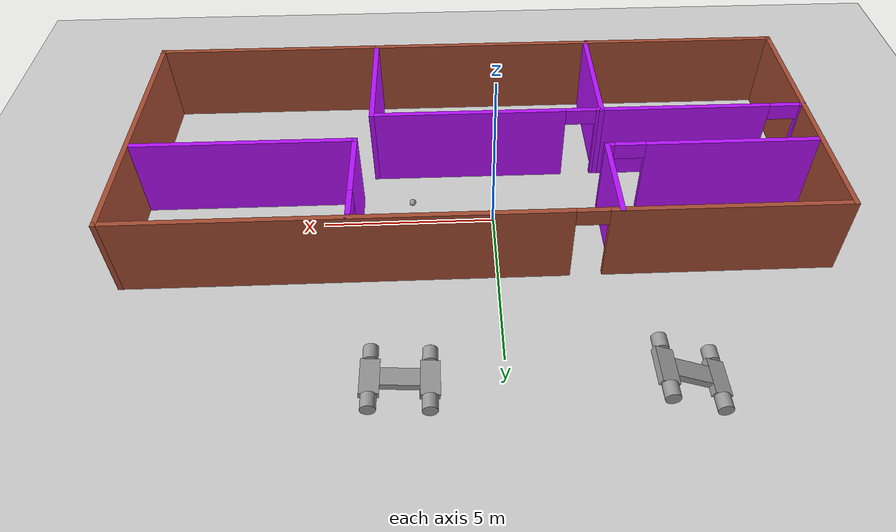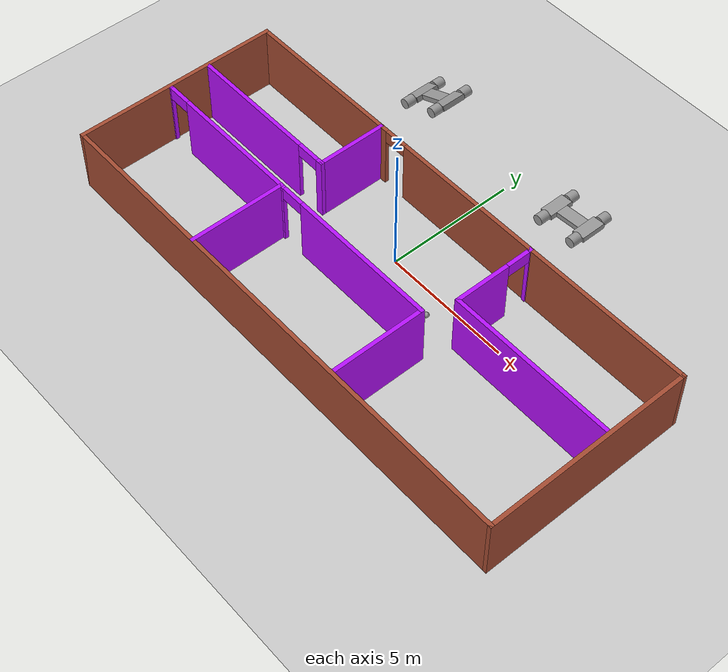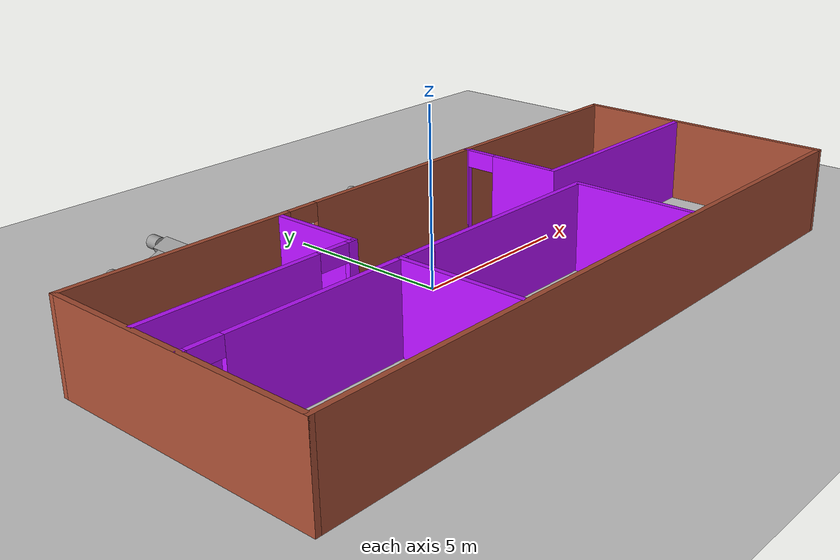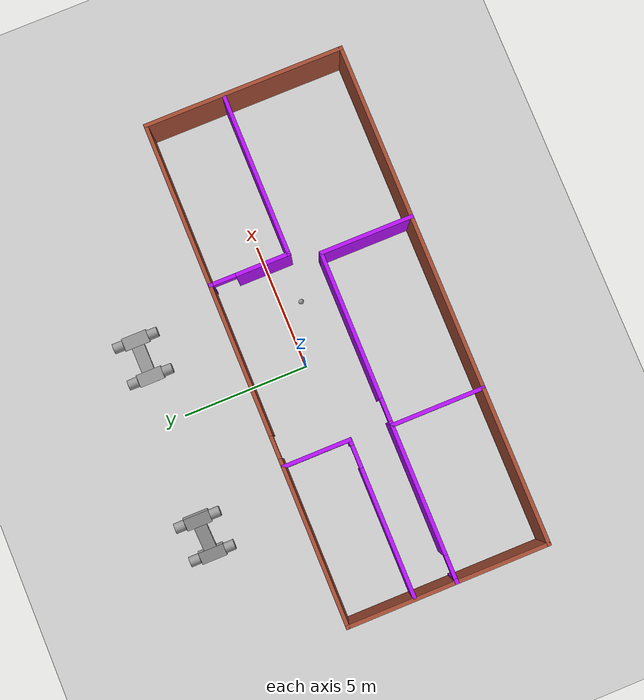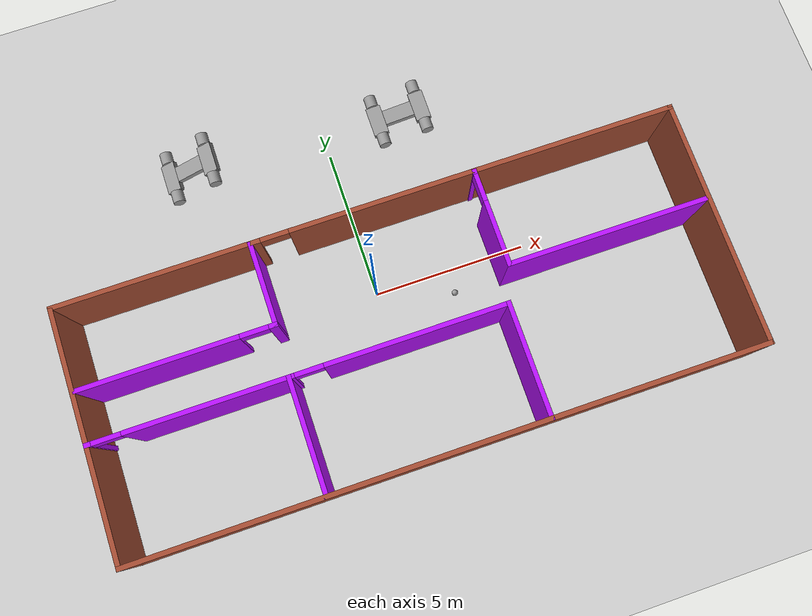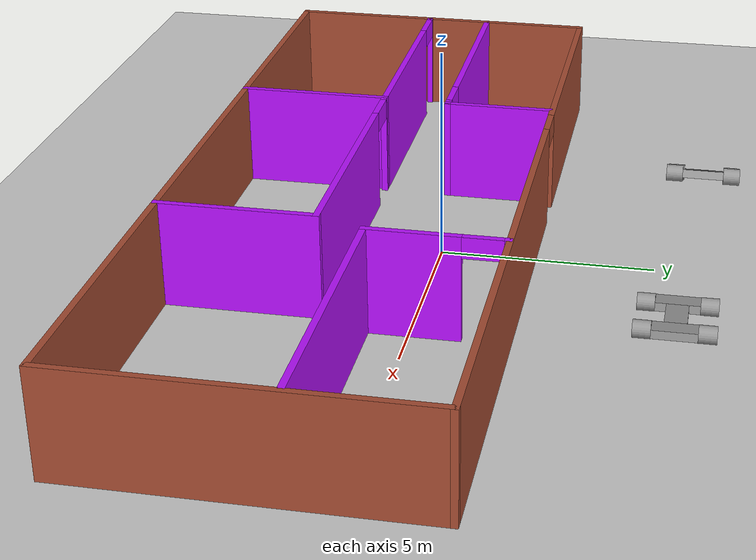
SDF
<sdf version="1.6">
 <world name="default">
  <plugin name="welcome" filename="libwelcome.so"/>
  <light name="sun" type="directional">
   <pose>0 0 10 0 -0 0</pose>
   <diffuse>0.8 0.8 0.8 1</diffuse>
   <specular>0.2 0.2 0.2 1</specular>
   <attenuation>
    <range>1000</range>
    <constant>0.9</constant>
    <linear>0.01</linear>
    <quadratic>0.001</quadratic>
   </attenuation>
   <direction>-0.5 0.1 -0.9</direction>
  </light>
  <model name="ground_plane">
   <static>1</static>
   <link name="link">
    <collision name="collision">
     <geometry><plane><normal>0 0 1</normal><size>100 100</size></plane></geometry>
     <surface>
      <contact><collide_bitmask>65535</collide_bitmask></contact>
      <friction><ode><mu>100</mu><mu2>50</mu2></ode></friction>
     </surface>
    </collision>
    <visual name="visual">
     <cast_shadows>0</cast_shadows>
     <geometry><plane><normal>0 0 1</normal><size>100 100</size></plane></geometry>
     <material>
      <script><uri>file://media/materials/scripts/gazebo.material</uri><name>Gazebo/Grey</name></script>
     </material>
    </visual>
   </link>
  </model>
  <gravity>0 0 -9.8</gravity>
  <magnetic_field>6e-06 2.3e-05 -4.2e-05</magnetic_field>
  <atmosphere type="adiabatic"/>
  <physics name="default_physics" default="0" type="ode">
   <max_step_size>0.001</max_step_size>
   <real_time_factor>1</real_time_factor>
   <real_time_update_rate>1000</real_time_update_rate>
  </physics>
  <scene><ambient>0.4 0.4 0.4 1</ambient><background>0.7 0.7 0.7 1</background><shadows>1</shadows></scene>
  <spherical_coordinates>
   <surface_model>EARTH_WGS84</surface_model>
   <latitude_deg>0</latitude_deg>
   <longitude_deg>0</longitude_deg>
   <elevation>0</elevation>
   <heading_deg>0</heading_deg>
  </spherical_coordinates>
  <model name="mycar">
   <link name="link_0">
    <pose>-0.750022 -0.70002 0 1.5707 -0 0</pose>
    <inertial>
     <mass>1</mass>
     <inertia><ixx>0.145833</ixx><ixy>0</ixy><ixz>0</ixz><iyy>0.145833</iyy><iyz>0</iyz><izz>0.125</izz></inertia>
    </inertial>
    <visual name="visual">
     <geometry><cylinder><radius>0.2</radius><length>0.4</length></cylinder></geometry>
     <material>
      <lighting>1</lighting>
      <script><uri>file://media/materials/scripts/gazebo.material</uri><name>Gazebo/Grey</name></script>
      <shader type="pixel"><normal_map>__default__</normal_map></shader>
      <ambient>0.3 0.3 0.3 1</ambient>
      <diffuse>0.7 0.7 0.7 1</diffuse>
      <specular>0.01 0.01 0.01 1</specular>
      <emissive>0 0 0 1</emissive>
     </material>
    </visual>
    <collision name="collision">
     <geometry><cylinder><radius>0.2</radius><length>0.4</length></cylinder></geometry>
     <surface>
      <friction>
       <ode><mu>1</mu><mu2>1</mu2><fdir1>0 0 0</fdir1><slip1>0</slip1><slip2>0</slip2></ode>
       <torsional>
        <coefficient>1</coefficient>
        <patch_radius>0</patch_radius>
        <surface_radius>0</surface_radius>
        <use_patch_radius>1</use_patch_radius>
        <ode><slip>0</slip></ode>
       </torsional>
      </friction>
      <bounce><restitution_coefficient>0</restitution_coefficient><threshold>1e+06</threshold></bounce>
      <contact>
       <collide_without_contact>0</collide_without_contact>
       <collide_without_contact_bitmask>1</collide_without_contact_bitmask>
       <collide_bitmask>1</collide_bitmask>
       <ode>
        <soft_cfm>0</soft_cfm>
        <soft_erp>0.2</soft_erp>
        <kp>1e+13</kp>
        <kd>1</kd>
        <max_vel>0.01</max_vel>
        <min_depth>0</min_depth>
       </ode>
       <bullet>
        <split_impulse>1</split_impulse>
        <split_impulse_penetration_threshold>-0.01</split_impulse_penetration_threshold>
        <soft_cfm>0</soft_cfm>
        <soft_erp>0.2</soft_erp>
        <kp>1e+13</kp>
        <kd>1</kd>
       </bullet>
      </contact>
     </surface>
    </collision>
   </link>
   <link name="link_0_clone">
    <pose>-0.750022 0.700018 0 1.5707 -0 0</pose>
    <inertial>
     <mass>1</mass>
     <inertia><ixx>0.145833</ixx><ixy>0</ixy><ixz>0</ixz><iyy>0.145833</iyy><iyz>0</iyz><izz>0.125</izz></inertia>
    </inertial>
    <visual name="visual">
     <geometry><cylinder><radius>0.2</radius><length>0.4</length></cylinder></geometry>
     <material>
      <lighting>1</lighting>
      <script><uri>file://media/materials/scripts/gazebo.material</uri><name>Gazebo/Grey</name></script>
      <shader type="pixel"><normal_map>__default__</normal_map></shader>
      <ambient>0.3 0.3 0.3 1</ambient>
      <diffuse>0.7 0.7 0.7 1</diffuse>
      <specular>0.01 0.01 0.01 1</specular>
      <emissive>0 0 0 1</emissive>
     </material>
    </visual>
    <collision name="collision">
     <geometry><cylinder><radius>0.2</radius><length>0.4</length></cylinder></geometry>
     <surface>
      <friction>
       <ode><mu>1</mu><mu2>1</mu2><fdir1>0 0 0</fdir1><slip1>0</slip1><slip2>0</slip2></ode>
       <torsional>
        <coefficient>1</coefficient>
        <patch_radius>0</patch_radius>
        <surface_radius>0</surface_radius>
        <use_patch_radius>1</use_patch_radius>
        <ode><slip>0</slip></ode>
       </torsional>
      </friction>
      <bounce><restitution_coefficient>0</restitution_coefficient><threshold>1e+06</threshold></bounce>
      <contact>
       <collide_without_contact>0</collide_without_contact>
       <collide_without_contact_bitmask>1</collide_without_contact_bitmask>
       <collide_bitmask>1</collide_bitmask>
       <ode>
        <soft_cfm>0</soft_cfm>
        <soft_erp>0.2</soft_erp>
        <kp>1e+13</kp>
        <kd>1</kd>
        <max_vel>0.01</max_vel>
        <min_depth>0</min_depth>
       </ode>
       <bullet>
        <split_impulse>1</split_impulse>
        <split_impulse_penetration_threshold>-0.01</split_impulse_penetration_threshold>
        <soft_cfm>0</soft_cfm>
        <soft_erp>0.2</soft_erp>
        <kp>1e+13</kp>
        <kd>1</kd>
       </bullet>
      </contact>
     </surface>
    </collision>
   </link>
   <link name="link_0_clone_0">
    <pose>0.750026 -0.70002 0 1.5707 -0 0</pose>
    <inertial>
     <mass>1</mass>
     <inertia><ixx>0.145833</ixx><ixy>0</ixy><ixz>0</ixz><iyy>0.145833</iyy><iyz>0</iyz><izz>0.125</izz></inertia>
    </inertial>
    <visual name="visual">
     <geometry><cylinder><radius>0.2</radius><length>0.4</length></cylinder></geometry>
     <material>
      <lighting>1</lighting>
      <script><uri>file://media/materials/scripts/gazebo.material</uri><name>Gazebo/Grey</name></script>
      <shader type="pixel"><normal_map>__default__</normal_map></shader>
      <ambient>0.3 0.3 0.3 1</ambient>
      <diffuse>0.7 0.7 0.7 1</diffuse>
      <specular>0.01 0.01 0.01 1</specular>
      <emissive>0 0 0 1</emissive>
     </material>
    </visual>
    <collision name="collision">
     <geometry><cylinder><radius>0.2</radius><length>0.4</length></cylinder></geometry>
     <surface>
      <friction>
       <ode><mu>1</mu><mu2>1</mu2><fdir1>0 0 0</fdir1><slip1>0</slip1><slip2>0</slip2></ode>
       <torsional>
        <coefficient>1</coefficient>
        <patch_radius>0</patch_radius>
        <surface_radius>0</surface_radius>
        <use_patch_radius>1</use_patch_radius>
        <ode><slip>0</slip></ode>
       </torsional>
      </friction>
      <bounce><restitution_coefficient>0</restitution_coefficient><threshold>1e+06</threshold></bounce>
      <contact>
       <collide_without_contact>0</collide_without_contact>
       <collide_without_contact_bitmask>1</collide_without_contact_bitmask>
       <collide_bitmask>1</collide_bitmask>
       <ode>
        <soft_cfm>0</soft_cfm>
        <soft_erp>0.2</soft_erp>
        <kp>1e+13</kp>
        <kd>1</kd>
        <max_vel>0.01</max_vel>
        <min_depth>0</min_depth>
       </ode>
       <bullet>
        <split_impulse>1</split_impulse>
        <split_impulse_penetration_threshold>-0.01</split_impulse_penetration_threshold>
        <soft_cfm>0</soft_cfm>
        <soft_erp>0.2</soft_erp>
        <kp>1e+13</kp>
        <kd>1</kd>
       </bullet>
      </contact>
     </surface>
    </collision>
   </link>
   <link name="link_0_clone_1">
    <pose>0.750026 0.700018 0 1.5707 -0 0</pose>
    <inertial>
     <mass>1</mass>
     <inertia><ixx>0.145833</ixx><ixy>0</ixy><ixz>0</ixz><iyy>0.145833</iyy><iyz>0</iyz><izz>0.125</izz></inertia>
    </inertial>
    <visual name="visual">
     <geometry><cylinder><radius>0.2</radius><length>0.4</length></cylinder></geometry>
     <material>
      <lighting>1</lighting>
      <script><uri>file://media/materials/scripts/gazebo.material</uri><name>Gazebo/Grey</name></script>
      <shader type="pixel"><normal_map>__default__</normal_map></shader>
      <ambient>0.3 0.3 0.3 1</ambient>
      <diffuse>0.7 0.7 0.7 1</diffuse>
      <specular>0.01 0.01 0.01 1</specular>
      <emissive>0 0 0 1</emissive>
     </material>
    </visual>
    <collision name="collision">
     <geometry><cylinder><radius>0.2</radius><length>0.4</length></cylinder></geometry>
     <surface>
      <friction>
       <ode><mu>1</mu><mu2>1</mu2><fdir1>0 0 0</fdir1><slip1>0</slip1><slip2>0</slip2></ode>
       <torsional>
        <coefficient>1</coefficient>
        <patch_radius>0</patch_radius>
        <surface_radius>0</surface_radius>
        <use_patch_radius>1</use_patch_radius>
        <ode><slip>0</slip></ode>
       </torsional>
      </friction>
      <bounce><restitution_coefficient>0</restitution_coefficient><threshold>1e+06</threshold></bounce>
      <contact>
       <collide_without_contact>0</collide_without_contact>
       <collide_without_contact_bitmask>1</collide_without_contact_bitmask>
       <collide_bitmask>1</collide_bitmask>
       <ode>
        <soft_cfm>0</soft_cfm>
        <soft_erp>0.2</soft_erp>
        <kp>1e+13</kp>
        <kd>1</kd>
        <max_vel>0.01</max_vel>
        <min_depth>0</min_depth>
       </ode>
       <bullet>
        <split_impulse>1</split_impulse>
        <split_impulse_penetration_threshold>-0.01</split_impulse_penetration_threshold>
        <soft_cfm>0</soft_cfm>
        <soft_erp>0.2</soft_erp>
        <kp>1e+13</kp>
        <kd>1</kd>
       </bullet>
      </contact>
     </surface>
    </collision>
   </link>
   <link name="link_1">
    <pose>0.750026 -1e-06 0 0 -0 0</pose>
    <inertial>
     <mass>1</mass>
     <inertia>
      <ixx>0.166667</ixx>
      <ixy>0</ixy>
      <ixz>0</ixz>
      <iyy>0.166667</iyy>
      <iyz>0</iyz>
      <izz>0.166667</izz>
     </inertia>
    </inertial>
    <visual name="visual">
     <geometry><box><size>0.5 1 0.2</size></box></geometry>
     <material>
      <lighting>1</lighting>
      <script><uri>file://media/materials/scripts/gazebo.material</uri><name>Gazebo/Grey</name></script>
      <shader type="pixel"><normal_map>__default__</normal_map></shader>
      <ambient>0.3 0.3 0.3 1</ambient>
      <diffuse>0.7 0.7 0.7 1</diffuse>
      <specular>0.01 0.01 0.01 1</specular>
      <emissive>0 0 0 1</emissive>
     </material>
    </visual>
    <collision name="collision">
     <geometry><box><size>0.5 1 0.2</size></box></geometry>
     <surface>
      <friction>
       <ode><mu>1</mu><mu2>1</mu2><fdir1>0 0 0</fdir1><slip1>0</slip1><slip2>0</slip2></ode>
       <torsional>
        <coefficient>1</coefficient>
        <patch_radius>0</patch_radius>
        <surface_radius>0</surface_radius>
        <use_patch_radius>1</use_patch_radius>
        <ode><slip>0</slip></ode>
       </torsional>
      </friction>
      <bounce><restitution_coefficient>0</restitution_coefficient><threshold>1e+06</threshold></bounce>
      <contact>
       <collide_without_contact>0</collide_without_contact>
       <collide_without_contact_bitmask>1</collide_without_contact_bitmask>
       <collide_bitmask>1</collide_bitmask>
       <ode>
        <soft_cfm>0</soft_cfm>
        <soft_erp>0.2</soft_erp>
        <kp>1e+13</kp>
        <kd>1</kd>
        <max_vel>0.01</max_vel>
        <min_depth>0</min_depth>
       </ode>
       <bullet>
        <split_impulse>1</split_impulse>
        <split_impulse_penetration_threshold>-0.01</split_impulse_penetration_threshold>
        <soft_cfm>0</soft_cfm>
        <soft_erp>0.2</soft_erp>
        <kp>1e+13</kp>
        <kd>1</kd>
       </bullet>
      </contact>
     </surface>
    </collision>
   </link>
   <link name="link_1_clone">
    <pose>-0.750022 -1e-06 0 0 -0 0</pose>
    <inertial>
     <mass>1</mass>
     <inertia>
      <ixx>0.166667</ixx>
      <ixy>0</ixy>
      <ixz>0</ixz>
      <iyy>0.166667</iyy>
      <iyz>0</iyz>
      <izz>0.166667</izz>
     </inertia>
    </inertial>
    <visual name="visual">
     <geometry><box><size>0.5 1 0.2</size></box></geometry>
     <material>
      <lighting>1</lighting>
      <script><uri>file://media/materials/scripts/gazebo.material</uri><name>Gazebo/Grey</name></script>
      <shader type="pixel"><normal_map>__default__</normal_map></shader>
      <ambient>0.3 0.3 0.3 1</ambient>
      <diffuse>0.7 0.7 0.7 1</diffuse>
      <specular>0.01 0.01 0.01 1</specular>
      <emissive>0 0 0 1</emissive>
     </material>
    </visual>
    <collision name="collision">
     <geometry><box><size>0.5 1 0.2</size></box></geometry>
     <surface>
      <friction>
       <ode><mu>1</mu><mu2>1</mu2><fdir1>0 0 0</fdir1><slip1>0</slip1><slip2>0</slip2></ode>
       <torsional>
        <coefficient>1</coefficient>
        <patch_radius>0</patch_radius>
        <surface_radius>0</surface_radius>
        <use_patch_radius>1</use_patch_radius>
        <ode><slip>0</slip></ode>
       </torsional>
      </friction>
      <bounce><restitution_coefficient>0</restitution_coefficient><threshold>1e+06</threshold></bounce>
      <contact>
       <collide_without_contact>0</collide_without_contact>
       <collide_without_contact_bitmask>1</collide_without_contact_bitmask>
       <collide_bitmask>1</collide_bitmask>
       <ode>
        <soft_cfm>0</soft_cfm>
        <soft_erp>0.2</soft_erp>
        <kp>1e+13</kp>
        <kd>1</kd>
        <max_vel>0.01</max_vel>
        <min_depth>0</min_depth>
       </ode>
       <bullet>
        <split_impulse>1</split_impulse>
        <split_impulse_penetration_threshold>-0.01</split_impulse_penetration_threshold>
        <soft_cfm>0</soft_cfm>
        <soft_erp>0.2</soft_erp>
        <kp>1e+13</kp>
        <kd>1</kd>
       </bullet>
      </contact>
     </surface>
    </collision>
   </link>
   <link name="link_1_clone_0">
    <pose>2e-06 -1e-06 0 0 -0 1.5707</pose>
    <inertial>
     <mass>1</mass>
     <inertia>
      <ixx>0.166667</ixx>
      <ixy>0</ixy>
      <ixz>0</ixz>
      <iyy>0.166667</iyy>
      <iyz>0</iyz>
      <izz>0.166667</izz>
     </inertia>
    </inertial>
    <visual name="visual">
     <geometry><box><size>0.5 1 0.2</size></box></geometry>
     <material>
      <lighting>1</lighting>
      <script><uri>file://media/materials/scripts/gazebo.material</uri><name>Gazebo/Grey</name></script>
      <shader type="pixel"><normal_map>__default__</normal_map></shader>
      <ambient>0.3 0.3 0.3 1</ambient>
      <diffuse>0.7 0.7 0.7 1</diffuse>
      <specular>0.01 0.01 0.01 1</specular>
      <emissive>0 0 0 1</emissive>
     </material>
    </visual>
    <collision name="collision">
     <geometry><box><size>0.5 1 0.2</size></box></geometry>
     <surface>
      <friction>
       <ode><mu>1</mu><mu2>1</mu2><fdir1>0 0 0</fdir1><slip1>0</slip1><slip2>0</slip2></ode>
       <torsional>
        <coefficient>1</coefficient>
        <patch_radius>0</patch_radius>
        <surface_radius>0</surface_radius>
        <use_patch_radius>1</use_patch_radius>
        <ode><slip>0</slip></ode>
       </torsional>
      </friction>
      <bounce><restitution_coefficient>0</restitution_coefficient><threshold>1e+06</threshold></bounce>
      <contact>
       <collide_without_contact>0</collide_without_contact>
       <collide_without_contact_bitmask>1</collide_without_contact_bitmask>
       <collide_bitmask>1</collide_bitmask>
       <ode>
        <soft_cfm>0</soft_cfm>
        <soft_erp>0.2</soft_erp>
        <kp>1e+13</kp>
        <kd>1</kd>
        <max_vel>0.01</max_vel>
        <min_depth>0</min_depth>
       </ode>
       <bullet>
        <split_impulse>1</split_impulse>
        <split_impulse_penetration_threshold>-0.01</split_impulse_penetration_threshold>
        <soft_cfm>0</soft_cfm>
        <soft_erp>0.2</soft_erp>
        <kp>1e+13</kp>
        <kd>1</kd>
       </bullet>
      </contact>
     </surface>
    </collision>
   </link>
   <joint name="link_1_JOINT_2" type="revolute">
    <parent>link_1</parent>
    <child>link_0_clone_0</child>
    <axis>
     <xyz>0 0 1</xyz>
     <use_parent_model_frame>0</use_parent_model_frame>
     <limit>
      <lower>-1.79769e+308</lower>
      <upper>1.79769e+308</upper>
      <effort>-1</effort>
      <velocity>-1</velocity>
     </limit>
     <dynamics>
      <spring_reference>0</spring_reference>
      <spring_stiffness>0</spring_stiffness>
      <damping>0</damping>
      <friction>0</friction>
     </dynamics>
    </axis>
    <physics>
     <ode><limit><cfm>0</cfm><erp>0.2</erp></limit><suspension><cfm>0</cfm><erp>0.2</erp></suspension></ode>
    </physics>
   </joint>
   <joint name="link_1_JOINT_3" type="revolute">
    <parent>link_1</parent>
    <child>link_0_clone_1</child>
    <axis>
     <xyz>0 0 1</xyz>
     <use_parent_model_frame>0</use_parent_model_frame>
     <limit>
      <lower>-1.79769e+308</lower>
      <upper>1.79769e+308</upper>
      <effort>-1</effort>
      <velocity>-1</velocity>
     </limit>
     <dynamics>
      <spring_reference>0</spring_reference>
      <spring_stiffness>0</spring_stiffness>
      <damping>0</damping>
     </dynamics>
    </axis>
    <physics>
     <ode><limit><cfm>0</cfm><erp>0.2</erp></limit><suspension><cfm>0</cfm><erp>0.2</erp></suspension></ode>
    </physics>
   </joint>
   <joint name="link_1_clone_0_JOINT_0" type="fixed">
    <parent>link_1_clone_0</parent>
    <child>link_1_clone</child>
    <physics>
     <ode><limit><cfm>0</cfm><erp>0.2</erp></limit><suspension><cfm>0</cfm><erp>0.2</erp></suspension></ode>
    </physics>
   </joint>
   <joint name="link_1_clone_0_JOINT_1" type="fixed">
    <parent>link_1_clone_0</parent>
    <child>link_1</child>
    <physics>
     <ode><limit><cfm>0</cfm><erp>0.2</erp></limit><suspension><cfm>0</cfm><erp>0.2</erp></suspension></ode>
    </physics>
   </joint>
   <joint name="link_1_clone_JOINT_4" type="revolute">
    <parent>link_1_clone</parent>
    <child>link_0</child>
    <axis>
     <xyz>0 0 1</xyz>
     <use_parent_model_frame>0</use_parent_model_frame>
     <limit>
      <lower>-1.79769e+308</lower>
      <upper>1.79769e+308</upper>
      <effort>-1</effort>
      <velocity>-1</velocity>
     </limit>
     <dynamics>
      <spring_reference>0</spring_reference>
      <spring_stiffness>0</spring_stiffness>
      <damping>0</damping>
     </dynamics>
    </axis>
    <physics>
     <ode><limit><cfm>0</cfm><erp>0.2</erp></limit><suspension><cfm>0</cfm><erp>0.2</erp></suspension></ode>
    </physics>
   </joint>
   <joint name="link_1_clone_JOINT_5" type="revolute">
    <parent>link_1_clone</parent>
    <child>link_0_clone</child>
    <axis>
     <xyz>0 0 1</xyz>
     <use_parent_model_frame>0</use_parent_model_frame>
     <limit>
      <lower>-1.79769e+308</lower>
      <upper>1.79769e+308</upper>
      <effort>-1</effort>
      <velocity>-1</velocity>
     </limit>
     <dynamics>
      <spring_reference>0</spring_reference>
      <spring_stiffness>0</spring_stiffness>
      <damping>0</damping>
     </dynamics>
    </axis>
    <physics>
     <ode><limit><cfm>0</cfm><erp>0.2</erp></limit><suspension><cfm>0</cfm><erp>0.2</erp></suspension></ode>
    </physics>
   </joint>
   <static>0</static>
   <pose>2.64196 5.64799 0.274882 -2e-06 -0.099982 0.000424</pose>
  </model>
  <model name="myroom">
   <pose>0.50331 -1.75342 0 0 -0 0</pose>
   <link name="Wall_1">
    <collision name="Wall_1_Collision">
     <geometry><box><size>8 0.15 2.5</size></box></geometry>
     <pose>0 0 1.25 0 -0 0</pose>
    </collision>
    <visual name="Wall_1_Visual">
     <pose>0 0 1.25 0 -0 0</pose>
     <geometry><box><size>8 0.15 2.5</size></box></geometry>
     <material>
      <script><uri>file://media/materials/scripts/gazebo.material</uri><name>Gazebo/Bricks</name></script>
      <ambient>1 1 1 1</ambient>
     </material>
     <meta><layer>0</layer></meta>
    </visual>
    <pose>-9.925 0 0 0 0 -1.5708</pose>
   </link>
   <link name="Wall_10">
    <pose>-6.78002 1.30489 0 0 -0 3.14159</pose>
    <visual name="Wall_10_Visual_0">
     <pose>-2.98063 0 1.25 0 -0 0</pose>
     <geometry><box><size>0.288748 0.15 2.5</size></box></geometry>
     <material>
      <script><uri>file://media/materials/scripts/gazebo.material</uri><name>Gazebo/Grey</name></script>
      <ambient>0.721569 0.0627451 1 1</ambient>
     </material>
     <meta><layer>0</layer></meta>
    </visual>
    <collision name="Wall_10_Collision_0">
     <geometry><box><size>0.288748 0.15 2.5</size></box></geometry>
     <pose>-2.98063 0 1.25 0 -0 0</pose>
    </collision>
    <visual name="Wall_10_Visual_1">
     <pose>0.594374 0 1.25 0 -0 0</pose>
     <geometry><box><size>5.06125 0.15 2.5</size></box></geometry>
     <material>
      <script><uri>file://media/materials/scripts/gazebo.material</uri><name>Gazebo/Grey</name></script>
      <ambient>0.721569 0.0627451 1 1</ambient>
     </material>
     <meta><layer>0</layer></meta>
    </visual>
    <collision name="Wall_10_Collision_1">
     <geometry><box><size>5.06125 0.15 2.5</size></box></geometry>
     <pose>0.594374 0 1.25 0 -0 0</pose>
    </collision>
    <visual name="Wall_10_Visual_2">
     <pose>-2.38625 0 2.25 0 -0 0</pose>
     <geometry><box><size>0.9 0.15 0.5</size></box></geometry>
     <material>
      <script><uri>file://media/materials/scripts/gazebo.material</uri><name>Gazebo/Grey</name></script>
      <ambient>0.721569 0.0627451 1 1</ambient>
     </material>
     <meta><layer>0</layer></meta>
    </visual>
    <collision name="Wall_10_Collision_2">
     <geometry><box><size>0.9 0.15 0.5</size></box></geometry>
     <pose>-2.38625 0 2.25 0 -0 0</pose>
    </collision>
   </link>
   <link name="Wall_12">
    <pose>-0.4 -0.318964 0 0 -0 0</pose>
    <visual name="Wall_12_Visual_0">
     <pose>-3.37853 0 1.25 0 -0 0</pose>
     <geometry><box><size>0.242933 0.15 2.5</size></box></geometry>
     <material>
      <script><uri>file://media/materials/scripts/gazebo.material</uri><name>Gazebo/Grey</name></script>
      <ambient>0.721569 0.0627451 1 1</ambient>
     </material>
     <meta><layer>0</layer></meta>
    </visual>
    <collision name="Wall_12_Collision_0">
     <geometry><box><size>0.242933 0.15 2.5</size></box></geometry>
     <pose>-3.37853 0 1.25 0 -0 0</pose>
    </collision>
    <visual name="Wall_12_Visual_1">
     <pose>0.571467 0 1.25 0 -0 0</pose>
     <geometry><box><size>5.85707 0.15 2.5</size></box></geometry>
     <material>
      <script><uri>file://media/materials/scripts/gazebo.material</uri><name>Gazebo/Grey</name></script>
      <ambient>0.721569 0.0627451 1 1</ambient>
     </material>
     <meta><layer>0</layer></meta>
    </visual>
    <collision name="Wall_12_Collision_1">
     <geometry><box><size>5.85707 0.15 2.5</size></box></geometry>
     <pose>0.571467 0 1.25 0 -0 0</pose>
    </collision>
    <visual name="Wall_12_Visual_2">
     <pose>-2.80707 0 2.25 0 -0 0</pose>
     <geometry><box><size>0.9 0.15 0.5</size></box></geometry>
     <material>
      <script><uri>file://media/materials/scripts/gazebo.material</uri><name>Gazebo/Grey</name></script>
      <ambient>0.721569 0.0627451 1 1</ambient>
     </material>
     <meta><layer>0</layer></meta>
    </visual>
    <collision name="Wall_12_Collision_2">
     <geometry><box><size>0.9 0.15 0.5</size></box></geometry>
     <pose>-2.80707 0 2.25 0 -0 0</pose>
    </collision>
   </link>
   <link name="Wall_13">
    <collision name="Wall_13_Collision">
     <geometry><box><size>3.75 0.15 2.5</size></box></geometry>
     <pose>0 0 1.25 0 -0 0</pose>
    </collision>
    <visual name="Wall_13_Visual">
     <pose>0 0 1.25 0 -0 0</pose>
     <geometry><box><size>3.75 0.15 2.5</size></box></geometry>
     <material>
      <script><uri>file://media/materials/scripts/gazebo.material</uri><name>Gazebo/Grey</name></script>
      <ambient>0.721569 0.0627451 1 1</ambient>
     </material>
     <meta><layer>0</layer></meta>
    </visual>
    <pose>3.025 -2.11896 0 0 0 -1.5708</pose>
   </link>
   <link name="Wall_15">
    <pose>3.45052 2.35489 0 0 0 -1.5708</pose>
    <visual name="Wall_15_Visual_0">
     <pose>-1.54097 0 1.25 0 -0 0</pose>
     <geometry><box><size>0.168066 0.15 2.5</size></box></geometry>
     <material>
      <script><uri>file://media/materials/scripts/gazebo.material</uri><name>Gazebo/Grey</name></script>
      <ambient>0.721569 0.0627451 1 1</ambient>
     </material>
     <meta><layer>0</layer></meta>
    </visual>
    <collision name="Wall_15_Collision_0">
     <geometry><box><size>0.168066 0.15 2.5</size></box></geometry>
     <pose>-1.54097 0 1.25 0 -0 0</pose>
    </collision>
    <visual name="Wall_15_Visual_1">
     <pose>0.534033 0 1.25 0 -0 0</pose>
     <geometry><box><size>2.18193 0.15 2.5</size></box></geometry>
     <material>
      <script><uri>file://media/materials/scripts/gazebo.material</uri><name>Gazebo/Grey</name></script>
      <ambient>0.721569 0.0627451 1 1</ambient>
     </material>
     <meta><layer>0</layer></meta>
    </visual>
    <collision name="Wall_15_Collision_1">
     <geometry><box><size>2.18193 0.15 2.5</size></box></geometry>
     <pose>0.534033 0 1.25 0 -0 0</pose>
    </collision>
    <visual name="Wall_15_Visual_2">
     <pose>-1.00693 0 2.25 0 -0 0</pose>
     <geometry><box><size>0.9 0.15 0.5</size></box></geometry>
     <material>
      <script><uri>file://media/materials/scripts/gazebo.material</uri><name>Gazebo/Grey</name></script>
      <ambient>0.721569 0.0627451 1 1</ambient>
     </material>
     <meta><layer>0</layer></meta>
    </visual>
    <collision name="Wall_15_Collision_2">
     <geometry><box><size>0.9 0.15 0.5</size></box></geometry>
     <pose>-1.00693 0 2.25 0 -0 0</pose>
    </collision>
   </link>
   <link name="Wall_16">
    <collision name="Wall_16_Collision">
     <geometry><box><size>6.5 0.15 2.5</size></box></geometry>
     <pose>0 0 1.25 0 -0 0</pose>
    </collision>
    <visual name="Wall_16_Visual">
     <pose>0 0 1.25 0 -0 0</pose>
     <geometry><box><size>6.5 0.15 2.5</size></box></geometry>
     <material>
      <script><uri>file://media/materials/scripts/gazebo.material</uri><name>Gazebo/Grey</name></script>
      <ambient>0.721569 0.0627451 1 1</ambient>
     </material>
     <meta><layer>0</layer></meta>
    </visual>
    <pose>6.62552 0.804886 0 0 -0 0</pose>
   </link>
   <link name="Wall_2">
    <collision name="Wall_2_Collision">
     <geometry><box><size>20 0.15 2.5</size></box></geometry>
     <pose>0 0 1.25 0 -0 0</pose>
    </collision>
    <visual name="Wall_2_Visual">
     <pose>0 0 1.25 0 -0 0</pose>
     <geometry><box><size>20 0.15 2.5</size></box></geometry>
     <material>
      <script><uri>file://media/materials/scripts/gazebo.material</uri><name>Gazebo/Bricks</name></script>
      <ambient>1 1 1 1</ambient>
     </material>
     <meta><layer>0</layer></meta>
    </visual>
    <pose>0 -3.925 0 0 -0 0</pose>
   </link>
   <link name="Wall_3">
    <collision name="Wall_3_Collision">
     <geometry><box><size>8 0.15 2.5</size></box></geometry>
     <pose>0 0 1.25 0 -0 0</pose>
    </collision>
    <visual name="Wall_3_Visual">
     <pose>0 0 1.25 0 -0 0</pose>
     <geometry><box><size>8 0.15 2.5</size></box></geometry>
     <material>
      <script><uri>file://media/materials/scripts/gazebo.material</uri><name>Gazebo/Bricks</name></script>
      <ambient>1 1 1 1</ambient>
     </material>
     <meta><layer>0</layer></meta>
    </visual>
    <pose>9.925 0 0 0 -0 1.5708</pose>
   </link>
   <link name="Wall_4">
    <pose>0 3.925 0 0 -0 3.14159</pose>
    <visual name="Wall_4_Visual_0">
     <pose>-3.74215 0 1.25 0 -0 0</pose>
     <geometry><box><size>12.5157 0.15 2.5</size></box></geometry>
     <material>
      <script><uri>file://media/materials/scripts/gazebo.material</uri><name>Gazebo/Bricks</name></script>
      <ambient>1 1 1 1</ambient>
     </material>
     <meta><layer>0</layer></meta>
    </visual>
    <collision name="Wall_4_Collision_0">
     <geometry><box><size>12.5157 0.15 2.5</size></box></geometry>
     <pose>-3.74215 0 1.25 0 -0 0</pose>
    </collision>
    <visual name="Wall_4_Visual_1">
     <pose>6.70785 0 1.25 0 -0 0</pose>
     <geometry><box><size>6.5843 0.15 2.5</size></box></geometry>
     <material>
      <script><uri>file://media/materials/scripts/gazebo.material</uri><name>Gazebo/Bricks</name></script>
      <ambient>1 1 1 1</ambient>
     </material>
     <meta><layer>0</layer></meta>
    </visual>
    <collision name="Wall_4_Collision_1">
     <geometry><box><size>6.5843 0.15 2.5</size></box></geometry>
     <pose>6.70785 0 1.25 0 -0 0</pose>
    </collision>
    <visual name="Wall_4_Visual_2">
     <pose>2.9657 0 2.25 0 -0 0</pose>
     <geometry><box><size>0.9 0.15 0.5</size></box></geometry>
     <material>
      <script><uri>file://media/materials/scripts/gazebo.material</uri><name>Gazebo/Bricks</name></script>
      <ambient>1 1 1 1</ambient>
     </material>
     <meta><layer>0</layer></meta>
    </visual>
    <collision name="Wall_4_Collision_2">
     <geometry><box><size>0.9 0.15 0.5</size></box></geometry>
     <pose>2.9657 0 2.25 0 -0 0</pose>
    </collision>
   </link>
   <link name="Wall_6">
    <pose>-6.875 -0.318964 0 0 -0 0</pose>
    <visual name="Wall_6_Visual_0">
     <pose>-3.02085 0 1.25 0 -0 0</pose>
     <geometry><box><size>0.208294 0.15 2.5</size></box></geometry>
     <material>
      <script><uri>file://media/materials/scripts/gazebo.material</uri><name>Gazebo/Grey</name></script>
      <ambient>0.721569 0.0627451 1 1</ambient>
     </material>
     <meta><layer>0</layer></meta>
    </visual>
    <collision name="Wall_6_Collision_0">
     <geometry><box><size>0.208294 0.15 2.5</size></box></geometry>
     <pose>-3.02085 0 1.25 0 -0 0</pose>
    </collision>
    <visual name="Wall_6_Visual_1">
     <pose>0.554147 0 1.25 0 -0 0</pose>
     <geometry><box><size>5.14171 0.15 2.5</size></box></geometry>
     <material>
      <script><uri>file://media/materials/scripts/gazebo.material</uri><name>Gazebo/Grey</name></script>
      <ambient>0.721569 0.0627451 1 1</ambient>
     </material>
     <meta><layer>0</layer></meta>
    </visual>
    <collision name="Wall_6_Collision_1">
     <geometry><box><size>5.14171 0.15 2.5</size></box></geometry>
     <pose>0.554147 0 1.25 0 -0 0</pose>
    </collision>
    <visual name="Wall_6_Visual_2">
     <pose>-2.46671 0 2.25 0 -0 0</pose>
     <geometry><box><size>0.9 0.15 0.5</size></box></geometry>
     <material>
      <script><uri>file://media/materials/scripts/gazebo.material</uri><name>Gazebo/Grey</name></script>
      <ambient>0.721569 0.0627451 1 1</ambient>
     </material>
     <meta><layer>0</layer></meta>
    </visual>
    <collision name="Wall_6_Collision_2">
     <geometry><box><size>0.9 0.15 0.5</size></box></geometry>
     <pose>-2.46671 0 2.25 0 -0 0</pose>
    </collision>
   </link>
   <link name="Wall_7">
    <collision name="Wall_7_Collision">
     <geometry><box><size>3.75 0.15 2.5</size></box></geometry>
     <pose>0 0 1.25 0 -0 0</pose>
    </collision>
    <visual name="Wall_7_Visual">
     <pose>0 0 1.25 0 -0 0</pose>
     <geometry><box><size>3.75 0.15 2.5</size></box></geometry>
     <material>
      <script><uri>file://media/materials/scripts/gazebo.material</uri><name>Gazebo/Grey</name></script>
      <ambient>0.721569 0.0627451 1 1</ambient>
     </material>
     <meta><layer>0</layer></meta>
    </visual>
    <pose>-3.825 -2.11896 0 0 0 -1.5708</pose>
   </link>
   <link name="Wall_9">
    <collision name="Wall_9_Collision">
     <geometry><box><size>2.75 0.15 2.5</size></box></geometry>
     <pose>0 0 1.25 0 -0 0</pose>
    </collision>
    <visual name="Wall_9_Visual">
     <pose>0 0 1.25 0 -0 0</pose>
     <geometry><box><size>2.75 0.15 2.5</size></box></geometry>
     <material>
      <script><uri>file://media/materials/scripts/gazebo.material</uri><name>Gazebo/Grey</name></script>
      <ambient>0.721569 0.0627451 1 1</ambient>
     </material>
     <meta><layer>0</layer></meta>
    </visual>
    <pose>-3.73002 2.60489 0 0 0 -1.5708</pose>
   </link>
   <static>1</static>
  </model>
  <model name="mycar_clone">
   <link name="link_0">
    <pose>-0.750022 -0.70002 0 1.5707 -0 0</pose>
    <inertial>
     <mass>1</mass>
     <inertia><ixx>0.145833</ixx><ixy>0</ixy><ixz>0</ixz><iyy>0.145833</iyy><iyz>0</iyz><izz>0.125</izz></inertia>
    </inertial>
    <visual name="visual">
     <geometry><cylinder><radius>0.2</radius><length>0.4</length></cylinder></geometry>
     <material>
      <lighting>1</lighting>
      <script><uri>file://media/materials/scripts/gazebo.material</uri><name>Gazebo/Grey</name></script>
      <shader type="pixel"><normal_map>__default__</normal_map></shader>
      <ambient>0.3 0.3 0.3 1</ambient>
      <diffuse>0.7 0.7 0.7 1</diffuse>
      <specular>0.01 0.01 0.01 1</specular>
      <emissive>0 0 0 1</emissive>
     </material>
    </visual>
    <collision name="collision">
     <geometry><cylinder><radius>0.2</radius><length>0.4</length></cylinder></geometry>
     <surface>
      <friction>
       <ode><mu>1</mu><mu2>1</mu2><fdir1>0 0 0</fdir1><slip1>0</slip1><slip2>0</slip2></ode>
       <torsional>
        <coefficient>1</coefficient>
        <patch_radius>0</patch_radius>
        <surface_radius>0</surface_radius>
        <use_patch_radius>1</use_patch_radius>
        <ode><slip>0</slip></ode>
       </torsional>
      </friction>
      <bounce><restitution_coefficient>0</restitution_coefficient><threshold>1e+06</threshold></bounce>
      <contact>
       <collide_without_contact>0</collide_without_contact>
       <collide_without_contact_bitmask>1</collide_without_contact_bitmask>
       <collide_bitmask>1</collide_bitmask>
       <ode>
        <soft_cfm>0</soft_cfm>
        <soft_erp>0.2</soft_erp>
        <kp>1e+13</kp>
        <kd>1</kd>
        <max_vel>0.01</max_vel>
        <min_depth>0</min_depth>
       </ode>
       <bullet>
        <split_impulse>1</split_impulse>
        <split_impulse_penetration_threshold>-0.01</split_impulse_penetration_threshold>
        <soft_cfm>0</soft_cfm>
        <soft_erp>0.2</soft_erp>
        <kp>1e+13</kp>
        <kd>1</kd>
       </bullet>
      </contact>
     </surface>
    </collision>
   </link>
   <link name="link_0_clone">
    <pose>-0.750022 0.700018 0 1.5707 -0 0</pose>
    <inertial>
     <mass>1</mass>
     <inertia><ixx>0.145833</ixx><ixy>0</ixy><ixz>0</ixz><iyy>0.145833</iyy><iyz>0</iyz><izz>0.125</izz></inertia>
    </inertial>
    <visual name="visual">
     <geometry><cylinder><radius>0.2</radius><length>0.4</length></cylinder></geometry>
     <material>
      <lighting>1</lighting>
      <script><uri>file://media/materials/scripts/gazebo.material</uri><name>Gazebo/Grey</name></script>
      <shader type="pixel"><normal_map>__default__</normal_map></shader>
      <ambient>0.3 0.3 0.3 1</ambient>
      <diffuse>0.7 0.7 0.7 1</diffuse>
      <specular>0.01 0.01 0.01 1</specular>
      <emissive>0 0 0 1</emissive>
     </material>
    </visual>
    <collision name="collision">
     <geometry><cylinder><radius>0.2</radius><length>0.4</length></cylinder></geometry>
     <surface>
      <friction>
       <ode><mu>1</mu><mu2>1</mu2><fdir1>0 0 0</fdir1><slip1>0</slip1><slip2>0</slip2></ode>
       <torsional>
        <coefficient>1</coefficient>
        <patch_radius>0</patch_radius>
        <surface_radius>0</surface_radius>
        <use_patch_radius>1</use_patch_radius>
        <ode><slip>0</slip></ode>
       </torsional>
      </friction>
      <bounce><restitution_coefficient>0</restitution_coefficient><threshold>1e+06</threshold></bounce>
      <contact>
       <collide_without_contact>0</collide_without_contact>
       <collide_without_contact_bitmask>1</collide_without_contact_bitmask>
       <collide_bitmask>1</collide_bitmask>
       <ode>
        <soft_cfm>0</soft_cfm>
        <soft_erp>0.2</soft_erp>
        <kp>1e+13</kp>
        <kd>1</kd>
        <max_vel>0.01</max_vel>
        <min_depth>0</min_depth>
       </ode>
       <bullet>
        <split_impulse>1</split_impulse>
        <split_impulse_penetration_threshold>-0.01</split_impulse_penetration_threshold>
        <soft_cfm>0</soft_cfm>
        <soft_erp>0.2</soft_erp>
        <kp>1e+13</kp>
        <kd>1</kd>
       </bullet>
      </contact>
     </surface>
    </collision>
   </link>
   <link name="link_0_clone_0">
    <pose>0.750026 -0.70002 0 1.5707 -0 0</pose>
    <inertial>
     <mass>1</mass>
     <inertia><ixx>0.145833</ixx><ixy>0</ixy><ixz>0</ixz><iyy>0.145833</iyy><iyz>0</iyz><izz>0.125</izz></inertia>
    </inertial>
    <visual name="visual">
     <geometry><cylinder><radius>0.2</radius><length>0.4</length></cylinder></geometry>
     <material>
      <lighting>1</lighting>
      <script><uri>file://media/materials/scripts/gazebo.material</uri><name>Gazebo/Grey</name></script>
      <shader type="pixel"><normal_map>__default__</normal_map></shader>
      <ambient>0.3 0.3 0.3 1</ambient>
      <diffuse>0.7 0.7 0.7 1</diffuse>
      <specular>0.01 0.01 0.01 1</specular>
      <emissive>0 0 0 1</emissive>
     </material>
    </visual>
    <collision name="collision">
     <geometry><cylinder><radius>0.2</radius><length>0.4</length></cylinder></geometry>
     <surface>
      <friction>
       <ode><mu>1</mu><mu2>1</mu2><fdir1>0 0 0</fdir1><slip1>0</slip1><slip2>0</slip2></ode>
       <torsional>
        <coefficient>1</coefficient>
        <patch_radius>0</patch_radius>
        <surface_radius>0</surface_radius>
        <use_patch_radius>1</use_patch_radius>
        <ode><slip>0</slip></ode>
       </torsional>
      </friction>
      <bounce><restitution_coefficient>0</restitution_coefficient><threshold>1e+06</threshold></bounce>
      <contact>
       <collide_without_contact>0</collide_without_contact>
       <collide_without_contact_bitmask>1</collide_without_contact_bitmask>
       <collide_bitmask>1</collide_bitmask>
       <ode>
        <soft_cfm>0</soft_cfm>
        <soft_erp>0.2</soft_erp>
        <kp>1e+13</kp>
        <kd>1</kd>
        <max_vel>0.01</max_vel>
        <min_depth>0</min_depth>
       </ode>
       <bullet>
        <split_impulse>1</split_impulse>
        <split_impulse_penetration_threshold>-0.01</split_impulse_penetration_threshold>
        <soft_cfm>0</soft_cfm>
        <soft_erp>0.2</soft_erp>
        <kp>1e+13</kp>
        <kd>1</kd>
       </bullet>
      </contact>
     </surface>
    </collision>
   </link>
   <link name="link_0_clone_1">
    <pose>0.750026 0.700018 0 1.5707 -0 0</pose>
    <inertial>
     <mass>1</mass>
     <inertia><ixx>0.145833</ixx><ixy>0</ixy><ixz>0</ixz><iyy>0.145833</iyy><iyz>0</iyz><izz>0.125</izz></inertia>
    </inertial>
    <visual name="visual">
     <geometry><cylinder><radius>0.2</radius><length>0.4</length></cylinder></geometry>
     <material>
      <lighting>1</lighting>
      <script><uri>file://media/materials/scripts/gazebo.material</uri><name>Gazebo/Grey</name></script>
      <shader type="pixel"><normal_map>__default__</normal_map></shader>
      <ambient>0.3 0.3 0.3 1</ambient>
      <diffuse>0.7 0.7 0.7 1</diffuse>
      <specular>0.01 0.01 0.01 1</specular>
      <emissive>0 0 0 1</emissive>
     </material>
    </visual>
    <collision name="collision">
     <geometry><cylinder><radius>0.2</radius><length>0.4</length></cylinder></geometry>
     <surface>
      <friction>
       <ode><mu>1</mu><mu2>1</mu2><fdir1>0 0 0</fdir1><slip1>0</slip1><slip2>0</slip2></ode>
       <torsional>
        <coefficient>1</coefficient>
        <patch_radius>0</patch_radius>
        <surface_radius>0</surface_radius>
        <use_patch_radius>1</use_patch_radius>
        <ode><slip>0</slip></ode>
       </torsional>
      </friction>
      <bounce><restitution_coefficient>0</restitution_coefficient><threshold>1e+06</threshold></bounce>
      <contact>
       <collide_without_contact>0</collide_without_contact>
       <collide_without_contact_bitmask>1</collide_without_contact_bitmask>
       <collide_bitmask>1</collide_bitmask>
       <ode>
        <soft_cfm>0</soft_cfm>
        <soft_erp>0.2</soft_erp>
        <kp>1e+13</kp>
        <kd>1</kd>
        <max_vel>0.01</max_vel>
        <min_depth>0</min_depth>
       </ode>
       <bullet>
        <split_impulse>1</split_impulse>
        <split_impulse_penetration_threshold>-0.01</split_impulse_penetration_threshold>
        <soft_cfm>0</soft_cfm>
        <soft_erp>0.2</soft_erp>
        <kp>1e+13</kp>
        <kd>1</kd>
       </bullet>
      </contact>
     </surface>
    </collision>
   </link>
   <link name="link_1">
    <pose>0.750026 -1e-06 0 0 -0 0</pose>
    <inertial>
     <mass>1</mass>
     <inertia>
      <ixx>0.166667</ixx>
      <ixy>0</ixy>
      <ixz>0</ixz>
      <iyy>0.166667</iyy>
      <iyz>0</iyz>
      <izz>0.166667</izz>
     </inertia>
    </inertial>
    <visual name="visual">
     <geometry><box><size>0.5 1 0.2</size></box></geometry>
     <material>
      <lighting>1</lighting>
      <script><uri>file://media/materials/scripts/gazebo.material</uri><name>Gazebo/Grey</name></script>
      <shader type="pixel"><normal_map>__default__</normal_map></shader>
      <ambient>0.3 0.3 0.3 1</ambient>
      <diffuse>0.7 0.7 0.7 1</diffuse>
      <specular>0.01 0.01 0.01 1</specular>
      <emissive>0 0 0 1</emissive>
     </material>
    </visual>
    <collision name="collision">
     <geometry><box><size>0.5 1 0.2</size></box></geometry>
     <surface>
      <friction>
       <ode><mu>1</mu><mu2>1</mu2><fdir1>0 0 0</fdir1><slip1>0</slip1><slip2>0</slip2></ode>
       <torsional>
        <coefficient>1</coefficient>
        <patch_radius>0</patch_radius>
        <surface_radius>0</surface_radius>
        <use_patch_radius>1</use_patch_radius>
        <ode><slip>0</slip></ode>
       </torsional>
      </friction>
      <bounce><restitution_coefficient>0</restitution_coefficient><threshold>1e+06</threshold></bounce>
      <contact>
       <collide_without_contact>0</collide_without_contact>
       <collide_without_contact_bitmask>1</collide_without_contact_bitmask>
       <collide_bitmask>1</collide_bitmask>
       <ode>
        <soft_cfm>0</soft_cfm>
        <soft_erp>0.2</soft_erp>
        <kp>1e+13</kp>
        <kd>1</kd>
        <max_vel>0.01</max_vel>
        <min_depth>0</min_depth>
       </ode>
       <bullet>
        <split_impulse>1</split_impulse>
        <split_impulse_penetration_threshold>-0.01</split_impulse_penetration_threshold>
        <soft_cfm>0</soft_cfm>
        <soft_erp>0.2</soft_erp>
        <kp>1e+13</kp>
        <kd>1</kd>
       </bullet>
      </contact>
     </surface>
    </collision>
   </link>
   <link name="link_1_clone">
    <pose>-0.750022 -1e-06 0 0 -0 0</pose>
    <inertial>
     <mass>1</mass>
     <inertia>
      <ixx>0.166667</ixx>
      <ixy>0</ixy>
      <ixz>0</ixz>
      <iyy>0.166667</iyy>
      <iyz>0</iyz>
      <izz>0.166667</izz>
     </inertia>
    </inertial>
    <visual name="visual">
     <geometry><box><size>0.5 1 0.2</size></box></geometry>
     <material>
      <lighting>1</lighting>
      <script><uri>file://media/materials/scripts/gazebo.material</uri><name>Gazebo/Grey</name></script>
      <shader type="pixel"><normal_map>__default__</normal_map></shader>
      <ambient>0.3 0.3 0.3 1</ambient>
      <diffuse>0.7 0.7 0.7 1</diffuse>
      <specular>0.01 0.01 0.01 1</specular>
      <emissive>0 0 0 1</emissive>
     </material>
    </visual>
    <collision name="collision">
     <geometry><box><size>0.5 1 0.2</size></box></geometry>
     <surface>
      <friction>
       <ode><mu>1</mu><mu2>1</mu2><fdir1>0 0 0</fdir1><slip1>0</slip1><slip2>0</slip2></ode>
       <torsional>
        <coefficient>1</coefficient>
        <patch_radius>0</patch_radius>
        <surface_radius>0</surface_radius>
        <use_patch_radius>1</use_patch_radius>
        <ode><slip>0</slip></ode>
       </torsional>
      </friction>
      <bounce><restitution_coefficient>0</restitution_coefficient><threshold>1e+06</threshold></bounce>
      <contact>
       <collide_without_contact>0</collide_without_contact>
       <collide_without_contact_bitmask>1</collide_without_contact_bitmask>
       <collide_bitmask>1</collide_bitmask>
       <ode>
        <soft_cfm>0</soft_cfm>
        <soft_erp>0.2</soft_erp>
        <kp>1e+13</kp>
        <kd>1</kd>
        <max_vel>0.01</max_vel>
        <min_depth>0</min_depth>
       </ode>
       <bullet>
        <split_impulse>1</split_impulse>
        <split_impulse_penetration_threshold>-0.01</split_impulse_penetration_threshold>
        <soft_cfm>0</soft_cfm>
        <soft_erp>0.2</soft_erp>
        <kp>1e+13</kp>
        <kd>1</kd>
       </bullet>
      </contact>
     </surface>
    </collision>
   </link>
   <link name="link_1_clone_0">
    <pose>2e-06 -1e-06 0 0 -0 1.5707</pose>
    <inertial>
     <mass>1</mass>
     <inertia>
      <ixx>0.166667</ixx>
      <ixy>0</ixy>
      <ixz>0</ixz>
      <iyy>0.166667</iyy>
      <iyz>0</iyz>
      <izz>0.166667</izz>
     </inertia>
    </inertial>
    <visual name="visual">
     <geometry><box><size>0.5 1 0.2</size></box></geometry>
     <material>
      <lighting>1</lighting>
      <script><uri>file://media/materials/scripts/gazebo.material</uri><name>Gazebo/Grey</name></script>
      <shader type="pixel"><normal_map>__default__</normal_map></shader>
      <ambient>0.3 0.3 0.3 1</ambient>
      <diffuse>0.7 0.7 0.7 1</diffuse>
      <specular>0.01 0.01 0.01 1</specular>
      <emissive>0 0 0 1</emissive>
     </material>
    </visual>
    <collision name="collision">
     <geometry><box><size>0.5 1 0.2</size></box></geometry>
     <surface>
      <friction>
       <ode><mu>1</mu><mu2>1</mu2><fdir1>0 0 0</fdir1><slip1>0</slip1><slip2>0</slip2></ode>
       <torsional>
        <coefficient>1</coefficient>
        <patch_radius>0</patch_radius>
        <surface_radius>0</surface_radius>
        <use_patch_radius>1</use_patch_radius>
        <ode><slip>0</slip></ode>
       </torsional>
      </friction>
      <bounce><restitution_coefficient>0</restitution_coefficient><threshold>1e+06</threshold></bounce>
      <contact>
       <collide_without_contact>0</collide_without_contact>
       <collide_without_contact_bitmask>1</collide_without_contact_bitmask>
       <collide_bitmask>1</collide_bitmask>
       <ode>
        <soft_cfm>0</soft_cfm>
        <soft_erp>0.2</soft_erp>
        <kp>1e+13</kp>
        <kd>1</kd>
        <max_vel>0.01</max_vel>
        <min_depth>0</min_depth>
       </ode>
       <bullet>
        <split_impulse>1</split_impulse>
        <split_impulse_penetration_threshold>-0.01</split_impulse_penetration_threshold>
        <soft_cfm>0</soft_cfm>
        <soft_erp>0.2</soft_erp>
        <kp>1e+13</kp>
        <kd>1</kd>
       </bullet>
      </contact>
     </surface>
    </collision>
   </link>
   <joint name="link_1_JOINT_2" type="revolute">
    <parent>link_1</parent>
    <child>link_0_clone_0</child>
    <axis>
     <xyz>0 0 1</xyz>
     <use_parent_model_frame>0</use_parent_model_frame>
     <limit>
      <lower>-1.79769e+308</lower>
      <upper>1.79769e+308</upper>
      <effort>-1</effort>
      <velocity>-1</velocity>
     </limit>
     <dynamics>
      <spring_reference>0</spring_reference>
      <spring_stiffness>0</spring_stiffness>
      <damping>0</damping>
      <friction>0</friction>
     </dynamics>
    </axis>
    <physics>
     <ode><limit><cfm>0</cfm><erp>0.2</erp></limit><suspension><cfm>0</cfm><erp>0.2</erp></suspension></ode>
    </physics>
   </joint>
   <joint name="link_1_JOINT_3" type="revolute">
    <parent>link_1</parent>
    <child>link_0_clone_1</child>
    <axis>
     <xyz>0 0 1</xyz>
     <use_parent_model_frame>0</use_parent_model_frame>
     <limit>
      <lower>-1.79769e+308</lower>
      <upper>1.79769e+308</upper>
      <effort>-1</effort>
      <velocity>-1</velocity>
     </limit>
     <dynamics>
      <spring_reference>0</spring_reference>
      <spring_stiffness>0</spring_stiffness>
      <damping>0</damping>
     </dynamics>
    </axis>
    <physics>
     <ode><limit><cfm>0</cfm><erp>0.2</erp></limit><suspension><cfm>0</cfm><erp>0.2</erp></suspension></ode>
    </physics>
   </joint>
   <joint name="link_1_clone_0_JOINT_0" type="fixed">
    <parent>link_1_clone_0</parent>
    <child>link_1_clone</child>
    <physics>
     <ode><limit><cfm>0</cfm><erp>0.2</erp></limit><suspension><cfm>0</cfm><erp>0.2</erp></suspension></ode>
    </physics>
   </joint>
   <joint name="link_1_clone_0_JOINT_1" type="fixed">
    <parent>link_1_clone_0</parent>
    <child>link_1</child>
    <physics>
     <ode><limit><cfm>0</cfm><erp>0.2</erp></limit><suspension><cfm>0</cfm><erp>0.2</erp></suspension></ode>
    </physics>
   </joint>
   <joint name="link_1_clone_JOINT_4" type="revolute">
    <parent>link_1_clone</parent>
    <child>link_0</child>
    <axis>
     <xyz>0 0 1</xyz>
     <use_parent_model_frame>0</use_parent_model_frame>
     <limit>
      <lower>-1.79769e+308</lower>
      <upper>1.79769e+308</upper>
      <effort>-1</effort>
      <velocity>-1</velocity>
     </limit>
     <dynamics>
      <spring_reference>0</spring_reference>
      <spring_stiffness>0</spring_stiffness>
      <damping>0</damping>
     </dynamics>
    </axis>
    <physics>
     <ode><limit><cfm>0</cfm><erp>0.2</erp></limit><suspension><cfm>0</cfm><erp>0.2</erp></suspension></ode>
    </physics>
   </joint>
   <joint name="link_1_clone_JOINT_5" type="revolute">
    <parent>link_1_clone</parent>
    <child>link_0_clone</child>
    <axis>
     <xyz>0 0 1</xyz>
     <use_parent_model_frame>0</use_parent_model_frame>
     <limit>
      <lower>-1.79769e+308</lower>
      <upper>1.79769e+308</upper>
      <effort>-1</effort>
      <velocity>-1</velocity>
     </limit>
     <dynamics>
      <spring_reference>0</spring_reference>
      <spring_stiffness>0</spring_stiffness>
      <damping>0</damping>
     </dynamics>
    </axis>
    <physics>
     <ode><limit><cfm>0</cfm><erp>0.2</erp></limit><suspension><cfm>0</cfm><erp>0.2</erp></suspension></ode>
    </physics>
   </joint>
   <static>0</static>
   <pose>-4.51674 5.92687 0.495993 -1.2e-05 -0.405665 -0.002283</pose>
  </model>
  <audio><device>default</device></audio>
  <model name="my_ball">
   <link name="link_1">
    <inertial>
     <mass>1</mass>
     <inertia><ixx>0.1</ixx><ixy>0</ixy><ixz>0</ixz><iyy>0.1</iyy><iyz>0</iyz><izz>0.1</izz></inertia>
    </inertial>
    <visual name="visual">
     <geometry><sphere><radius>0.1</radius></sphere></geometry>
     <material>
      <lighting>1</lighting>
      <script><uri>file://media/materials/scripts/gazebo.material</uri><name>Gazebo/Grey</name></script>
      <shader type="vertex"><normal_map>__default__</normal_map></shader>
      <ambient>1 1 1 1</ambient>
      <diffuse>1 1 1 1</diffuse>
      <specular>1 1 1 1</specular>
      <emissive>1 1 1 1</emissive>
     </material>
    </visual>
    <collision name="collision">
     <geometry><sphere><radius>0.1</radius></sphere></geometry>
     <surface>
      <friction>
       <ode><mu>1</mu><mu2>1</mu2><fdir1>0 0 0</fdir1><slip1>0</slip1><slip2>0</slip2></ode>
       <torsional>
        <coefficient>1</coefficient>
        <patch_radius>0</patch_radius>
        <surface_radius>0</surface_radius>
        <use_patch_radius>1</use_patch_radius>
        <ode><slip>0</slip></ode>
       </torsional>
      </friction>
      <bounce><restitution_coefficient>0</restitution_coefficient><threshold>1e+06</threshold></bounce>
      <contact>
       <collide_without_contact>0</collide_without_contact>
       <collide_without_contact_bitmask>1</collide_without_contact_bitmask>
       <collide_bitmask>1</collide_bitmask>
       <ode>
        <soft_cfm>0</soft_cfm>
        <soft_erp>0.2</soft_erp>
        <kp>1e+13</kp>
        <kd>1</kd>
        <max_vel>0.01</max_vel>
        <min_depth>0</min_depth>
       </ode>
       <bullet>
        <split_impulse>1</split_impulse>
        <split_impulse_penetration_threshold>-0.01</split_impulse_penetration_threshold>
        <soft_cfm>0</soft_cfm>
        <soft_erp>0.2</soft_erp>
        <kp>1e+13</kp>
        <kd>1</kd>
       </bullet>
      </contact>
     </surface>
    </collision>
   </link>
   <static>0</static>
   <pose>2.40952 -0.777939 0.1 0 -0 0</pose>
  </model>
 </world>
</sdf>
